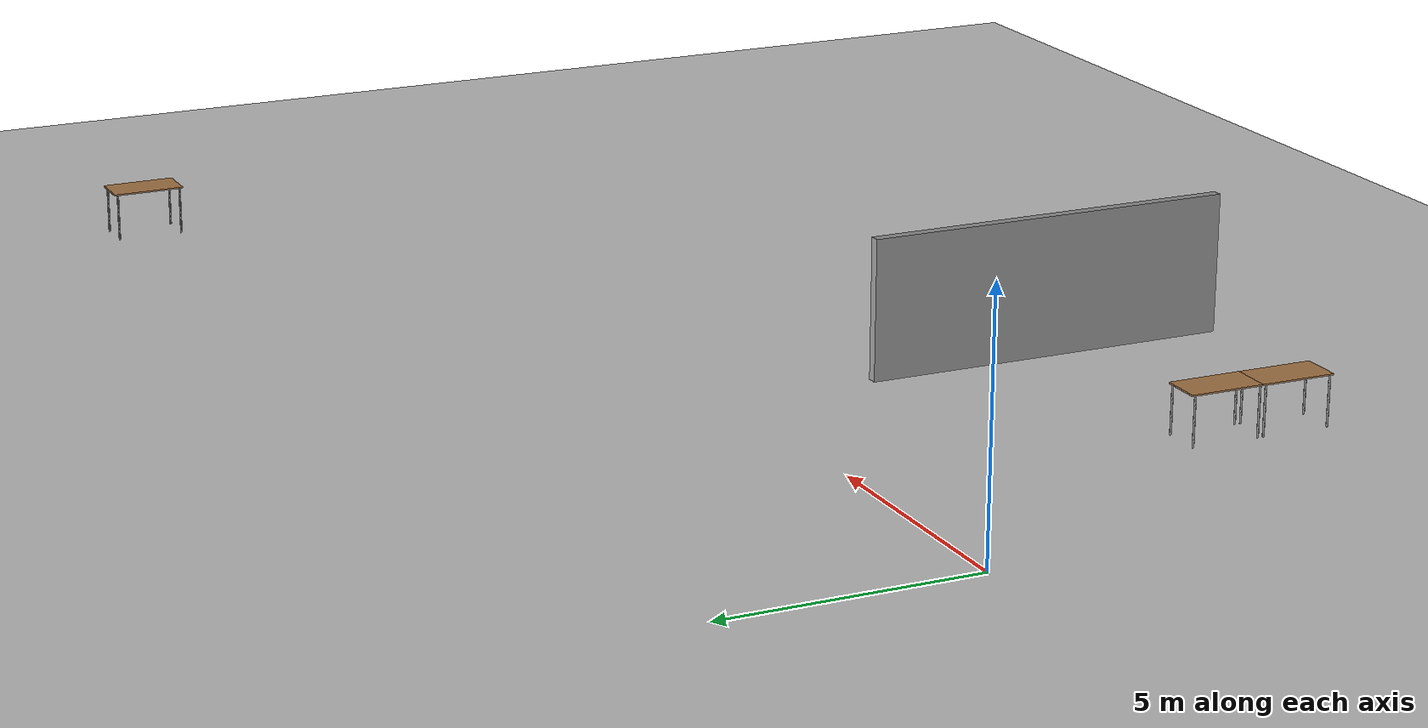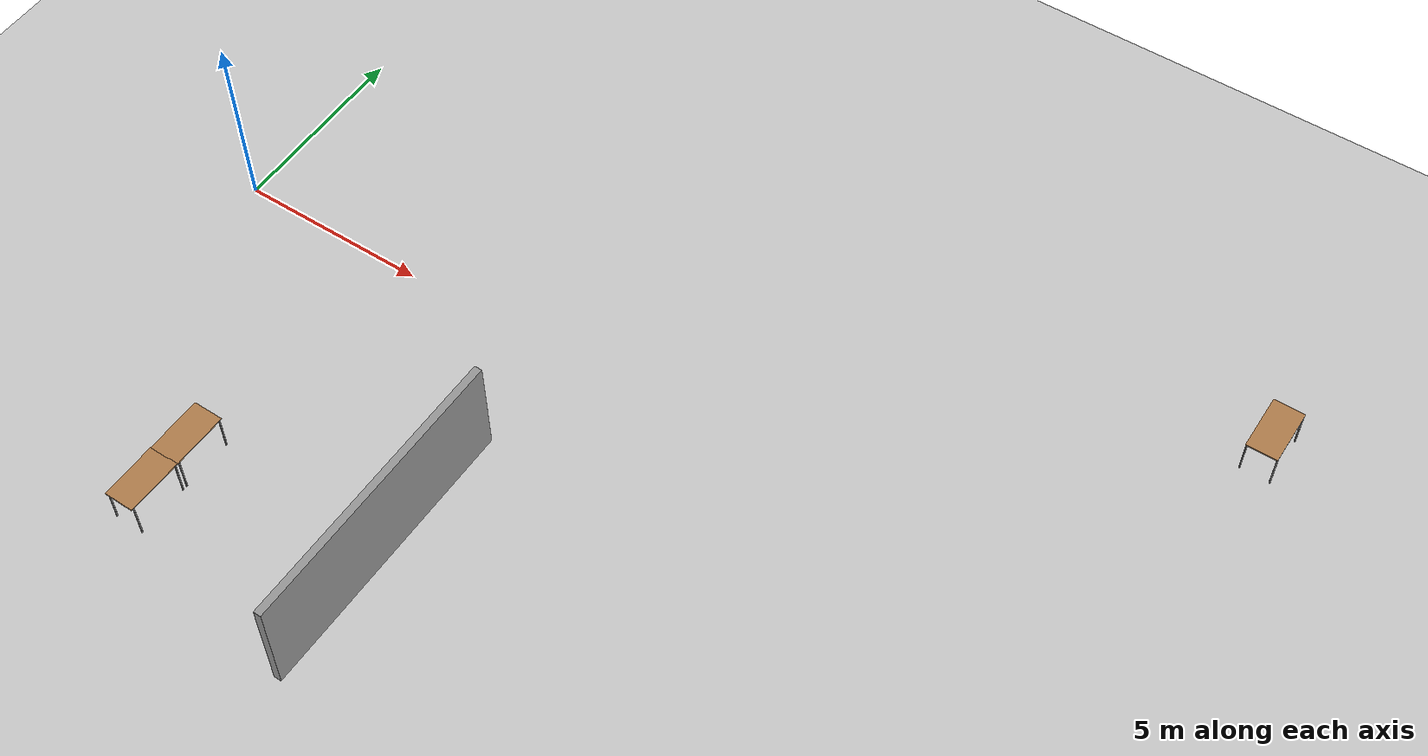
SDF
<sdf version="1.4">
 <world name="default">
  <model name="ground_plane">
   <static>1</static>
   <link name="link">
    <collision name="collision">
     <geometry><plane><normal>0 0 1</normal><size>100 100</size></plane></geometry>
     <surface><friction><ode><mu>100</mu><mu2>50</mu2></ode></friction></surface>
    </collision>
    <visual name="visual">
     <cast_shadows>0</cast_shadows>
     <geometry><plane><normal>0 0 1</normal><size>100 100</size></plane></geometry>
     <material>
      <script><uri>file://media/materials/scripts/gazebo.material</uri><name>Gazebo/Grey</name></script>
     </material>
    </visual>
    <velocity_decay><linear>0</linear><angular>0</angular></velocity_decay>
   </link>
  </model>
  <model name="grey_wall">
   <static>1</static>
   <link name="link">
    <pose>0 0 1.4 0 -0 0</pose>
    <collision name="collision"><geometry><box><size>7.5 0.2 2.8</size></box></geometry></collision>
    <visual name="visual">
     <cast_shadows>0</cast_shadows>
     <geometry><box><size>7.5 0.2 2.8</size></box></geometry>
     <material>
      <script>
       <uri>model://grey_wall/materials/scripts</uri>
       <uri>model://grey_wall/materials/textures</uri>
       <name>vrc/grey_wall</name>
      </script>
     </material>
    </visual>
    <velocity_decay><linear>0</linear><angular>0</angular></velocity_decay>
   </link>
   <pose>9.36447 -6.53474 0 0 0 -1.57522</pose>
  </model>
  <model name="table">
   <static>1</static>
   <link name="link">
    <collision name="surface">
     <pose>0 0 1 0 -0 0</pose>
     <geometry><box><size>1.5 0.8 0.03</size></box></geometry>
     <surface><friction><ode><mu>0.6</mu><mu2>0.6</mu2></ode></friction></surface>
    </collision>
    <visual name="visual1">
     <pose>0 0 1 0 -0 0</pose>
     <geometry><box><size>1.5 0.8 0.03</size></box></geometry>
     <material>
      <script><uri>file://media/materials/scripts/gazebo.material</uri><name>Gazebo/Wood</name></script>
     </material>
    </visual>
    <collision name="front_left_leg">
     <pose>0.68 0.38 0.5 0 -0 0</pose>
     <geometry><cylinder><radius>0.02</radius><length>1</length></cylinder></geometry>
    </collision>
    <visual name="front_left_leg">
     <pose>0.68 0.38 0.5 0 -0 0</pose>
     <geometry><cylinder><radius>0.02</radius><length>1</length></cylinder></geometry>
     <material>
      <script><uri>file://media/materials/scripts/gazebo.material</uri><name>Gazebo/Grey</name></script>
     </material>
    </visual>
    <collision name="front_right_leg">
     <pose>0.68 -0.38 0.5 0 -0 0</pose>
     <geometry><cylinder><radius>0.02</radius><length>1</length></cylinder></geometry>
    </collision>
    <visual name="front_right_leg">
     <pose>0.68 -0.38 0.5 0 -0 0</pose>
     <geometry><cylinder><radius>0.02</radius><length>1</length></cylinder></geometry>
     <material>
      <script><uri>file://media/materials/scripts/gazebo.material</uri><name>Gazebo/Grey</name></script>
     </material>
    </visual>
    <collision name="back_right_leg">
     <pose>-0.68 -0.38 0.5 0 -0 0</pose>
     <geometry><cylinder><radius>0.02</radius><length>1</length></cylinder></geometry>
    </collision>
    <visual name="back_right_leg">
     <pose>-0.68 -0.38 0.5 0 -0 0</pose>
     <geometry><cylinder><radius>0.02</radius><length>1</length></cylinder></geometry>
     <material>
      <script><uri>file://media/materials/scripts/gazebo.material</uri><name>Gazebo/Grey</name></script>
     </material>
    </visual>
    <collision name="back_left_leg">
     <pose>-0.68 0.38 0.5 0 -0 0</pose>
     <geometry><cylinder><radius>0.02</radius><length>1</length></cylinder></geometry>
    </collision>
    <visual name="back_left_leg">
     <pose>-0.68 0.38 0.5 0 -0 0</pose>
     <geometry><cylinder><radius>0.02</radius><length>1</length></cylinder></geometry>
     <material>
      <script><uri>file://media/materials/scripts/gazebo.material</uri><name>Gazebo/Grey</name></script>
     </material>
    </visual>
    <velocity_decay><linear>0</linear><angular>0</angular></velocity_decay>
   </link>
   <pose>24.6223 6.79371 0 0 0 -1.56769</pose>
  </model>
  <model name="table_0">
   <static>1</static>
   <link name="link">
    <collision name="surface">
     <pose>0 0 1 0 -0 0</pose>
     <geometry><box><size>1.5 0.8 0.03</size></box></geometry>
     <surface><friction><ode><mu>0.6</mu><mu2>0.6</mu2></ode></friction></surface>
    </collision>
    <visual name="visual1">
     <pose>0 0 1 0 -0 0</pose>
     <geometry><box><size>1.5 0.8 0.03</size></box></geometry>
     <material>
      <script><uri>file://media/materials/scripts/gazebo.material</uri><name>Gazebo/Wood</name></script>
     </material>
    </visual>
    <collision name="front_left_leg">
     <pose>0.68 0.38 0.5 0 -0 0</pose>
     <geometry><cylinder><radius>0.02</radius><length>1</length></cylinder></geometry>
    </collision>
    <visual name="front_left_leg">
     <pose>0.68 0.38 0.5 0 -0 0</pose>
     <geometry><cylinder><radius>0.02</radius><length>1</length></cylinder></geometry>
     <material>
      <script><uri>file://media/materials/scripts/gazebo.material</uri><name>Gazebo/Grey</name></script>
     </material>
    </visual>
    <collision name="front_right_leg">
     <pose>0.68 -0.38 0.5 0 -0 0</pose>
     <geometry><cylinder><radius>0.02</radius><length>1</length></cylinder></geometry>
    </collision>
    <visual name="front_right_leg">
     <pose>0.68 -0.38 0.5 0 -0 0</pose>
     <geometry><cylinder><radius>0.02</radius><length>1</length></cylinder></geometry>
     <material>
      <script><uri>file://media/materials/scripts/gazebo.material</uri><name>Gazebo/Grey</name></script>
     </material>
    </visual>
    <collision name="back_right_leg">
     <pose>-0.68 -0.38 0.5 0 -0 0</pose>
     <geometry><cylinder><radius>0.02</radius><length>1</length></cylinder></geometry>
    </collision>
    <visual name="back_right_leg">
     <pose>-0.68 -0.38 0.5 0 -0 0</pose>
     <geometry><cylinder><radius>0.02</radius><length>1</length></cylinder></geometry>
     <material>
      <script><uri>file://media/materials/scripts/gazebo.material</uri><name>Gazebo/Grey</name></script>
     </material>
    </visual>
    <collision name="back_left_leg">
     <pose>-0.68 0.38 0.5 0 -0 0</pose>
     <geometry><cylinder><radius>0.02</radius><length>1</length></cylinder></geometry>
    </collision>
    <visual name="back_left_leg">
     <pose>-0.68 0.38 0.5 0 -0 0</pose>
     <geometry><cylinder><radius>0.02</radius><length>1</length></cylinder></geometry>
     <material>
      <script><uri>file://media/materials/scripts/gazebo.material</uri><name>Gazebo/Grey</name></script>
     </material>
    </visual>
    <velocity_decay><linear>0</linear><angular>0</angular></velocity_decay>
   </link>
   <pose>4.03843 -8.43479 0 0 0 -1.5837</pose>
  </model>
  <model name="table_1">
   <static>1</static>
   <link name="link">
    <collision name="surface">
     <pose>0 0 1 0 -0 0</pose>
     <geometry><box><size>1.5 0.8 0.03</size></box></geometry>
     <surface><friction><ode><mu>0.6</mu><mu2>0.6</mu2></ode></friction></surface>
    </collision>
    <visual name="visual1">
     <pose>0 0 1 0 -0 0</pose>
     <geometry><box><size>1.5 0.8 0.03</size></box></geometry>
     <material>
      <script><uri>file://media/materials/scripts/gazebo.material</uri><name>Gazebo/Wood</name></script>
     </material>
    </visual>
    <collision name="front_left_leg">
     <pose>0.68 0.38 0.5 0 -0 0</pose>
     <geometry><cylinder><radius>0.02</radius><length>1</length></cylinder></geometry>
    </collision>
    <visual name="front_left_leg">
     <pose>0.68 0.38 0.5 0 -0 0</pose>
     <geometry><cylinder><radius>0.02</radius><length>1</length></cylinder></geometry>
     <material>
      <script><uri>file://media/materials/scripts/gazebo.material</uri><name>Gazebo/Grey</name></script>
     </material>
    </visual>
    <collision name="front_right_leg">
     <pose>0.68 -0.38 0.5 0 -0 0</pose>
     <geometry><cylinder><radius>0.02</radius><length>1</length></cylinder></geometry>
    </collision>
    <visual name="front_right_leg">
     <pose>0.68 -0.38 0.5 0 -0 0</pose>
     <geometry><cylinder><radius>0.02</radius><length>1</length></cylinder></geometry>
     <material>
      <script><uri>file://media/materials/scripts/gazebo.material</uri><name>Gazebo/Grey</name></script>
     </material>
    </visual>
    <collision name="back_right_leg">
     <pose>-0.68 -0.38 0.5 0 -0 0</pose>
     <geometry><cylinder><radius>0.02</radius><length>1</length></cylinder></geometry>
    </collision>
    <visual name="back_right_leg">
     <pose>-0.68 -0.38 0.5 0 -0 0</pose>
     <geometry><cylinder><radius>0.02</radius><length>1</length></cylinder></geometry>
     <material>
      <script><uri>file://media/materials/scripts/gazebo.material</uri><name>Gazebo/Grey</name></script>
     </material>
    </visual>
    <collision name="back_left_leg">
     <pose>-0.68 0.38 0.5 0 -0 0</pose>
     <geometry><cylinder><radius>0.02</radius><length>1</length></cylinder></geometry>
    </collision>
    <visual name="back_left_leg">
     <pose>-0.68 0.38 0.5 0 -0 0</pose>
     <geometry><cylinder><radius>0.02</radius><length>1</length></cylinder></geometry>
     <material>
      <script><uri>file://media/materials/scripts/gazebo.material</uri><name>Gazebo/Grey</name></script>
     </material>
    </visual>
    <velocity_decay><linear>0</linear><angular>0</angular></velocity_decay>
   </link>
   <pose>4.05835 -6.95589 0 0 0 -1.57884</pose>
  </model>
 </world>
</sdf>
